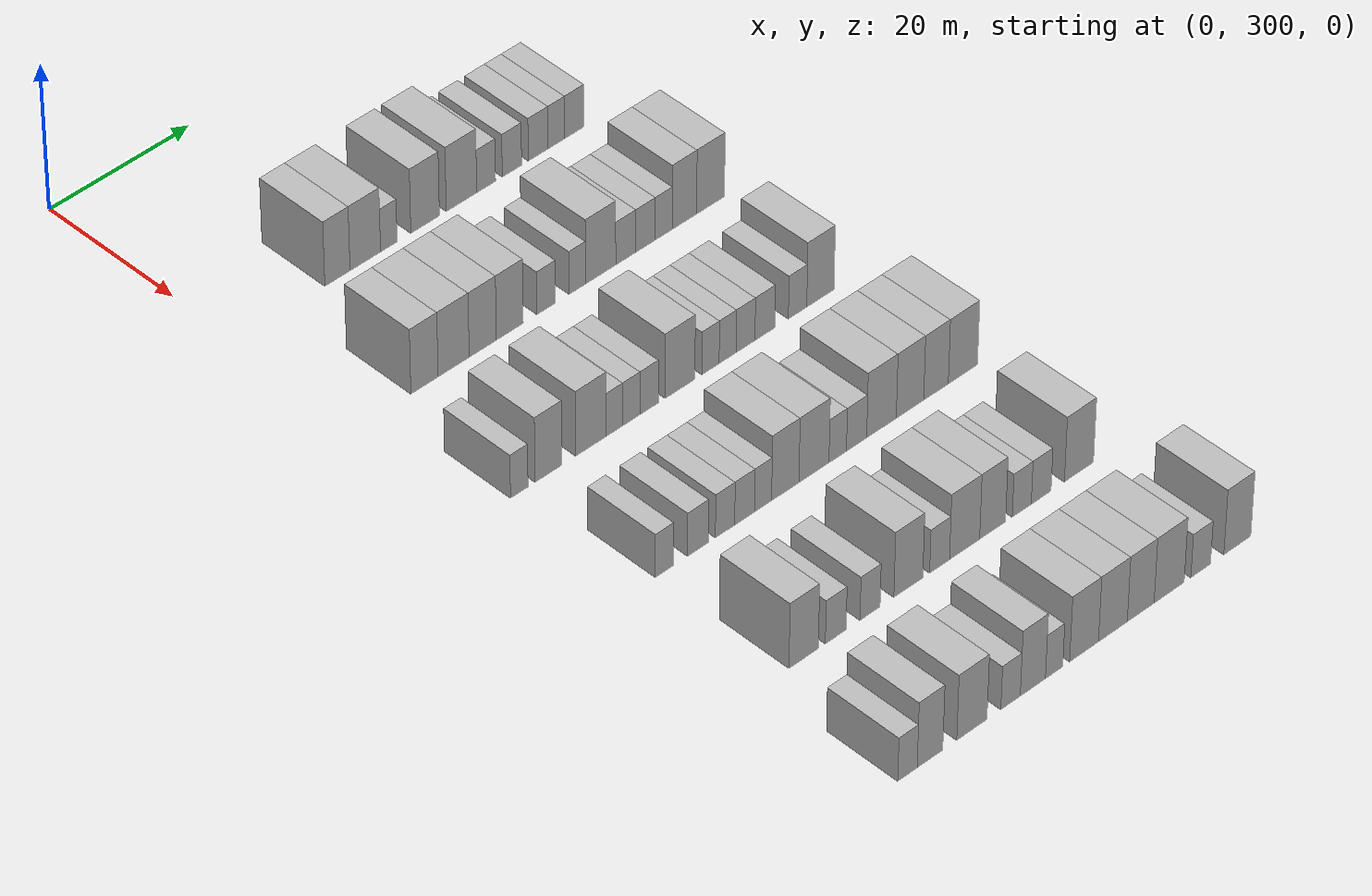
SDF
<sdf version="1.6">
 <world name="default">
  <model name="building_168">
   <static>1</static>
   <pose>25.0000 314.5331 0 0.000000 0.000000 0.000000</pose>
   <link name="link">
    <pose>0 0 4.50 0 0 0</pose>
    <collision name="collision"><geometry><box><size>10.0000 3.6293 9.0000</size></box></geometry></collision>
    <visual name="visual">
     <cast_shadows>0</cast_shadows>
     <geometry><box><size>10.0000 3.6293 9.0000</size></box></geometry>
     <material>
      <script>
       <uri>model://HANNAS_wall/materials/scripts</uri>
       <uri>model://HANNAS_wall/materials/textures</uri>
       <name>vrc/HANNAS_wall</name>
      </script>
     </material>
    </visual>
   </link>
  </model>
  <model name="building_169">
   <static>1</static>
   <pose>25.0000 318.5577 0 0.000000 0.000000 0.000000</pose>
   <link name="link">
    <pose>0 0 4.50 0 0 0</pose>
    <collision name="collision"><geometry><box><size>10.0000 4.4200 9.0000</size></box></geometry></collision>
    <visual name="visual">
     <cast_shadows>0</cast_shadows>
     <geometry><box><size>10.0000 4.4200 9.0000</size></box></geometry>
     <material>
      <script>
       <uri>model://HANNAS_wall/materials/scripts</uri>
       <uri>model://HANNAS_wall/materials/textures</uri>
       <name>vrc/HANNAS_wall</name>
      </script>
     </material>
    </visual>
   </link>
  </model>
  <model name="building_170">
   <static>1</static>
   <pose>25.0000 321.9725 0 0.000000 0.000000 0.000000</pose>
   <link name="link">
    <pose>0 0 3.00 0 0 0</pose>
    <collision name="collision"><geometry><box><size>10.0000 2.4096 6.0000</size></box></geometry></collision>
    <visual name="visual">
     <cast_shadows>0</cast_shadows>
     <geometry><box><size>10.0000 2.4096 6.0000</size></box></geometry>
     <material>
      <script>
       <uri>model://HANNAS_wall/materials/scripts</uri>
       <uri>model://HANNAS_wall/materials/textures</uri>
       <name>vrc/HANNAS_wall</name>
      </script>
     </material>
    </visual>
   </link>
  </model>
  <model name="building_171">
   <static>1</static>
   <pose>25.0000 327.2712 0 0.000000 0.000000 0.000000</pose>
   <link name="link">
    <pose>0 0 4.50 0 0 0</pose>
    <collision name="collision"><geometry><box><size>10.0000 4.1877 9.0000</size></box></geometry></collision>
    <visual name="visual">
     <cast_shadows>0</cast_shadows>
     <geometry><box><size>10.0000 4.1877 9.0000</size></box></geometry>
     <material>
      <script>
       <uri>model://HANNAS_wall/materials/scripts</uri>
       <uri>model://HANNAS_wall/materials/textures</uri>
       <name>vrc/HANNAS_wall</name>
      </script>
     </material>
    </visual>
   </link>
  </model>
  <model name="building_172">
   <static>1</static>
   <pose>25.0000 332.6108 0 0.000000 0.000000 0.000000</pose>
   <link name="link">
    <pose>0 0 4.50 0 0 0</pose>
    <collision name="collision"><geometry><box><size>10.0000 4.4915 9.0000</size></box></geometry></collision>
    <visual name="visual">
     <cast_shadows>0</cast_shadows>
     <geometry><box><size>10.0000 4.4915 9.0000</size></box></geometry>
     <material>
      <script>
       <uri>model://HANNAS_wall/materials/scripts</uri>
       <uri>model://HANNAS_wall/materials/textures</uri>
       <name>vrc/HANNAS_wall</name>
      </script>
     </material>
    </visual>
   </link>
  </model>
  <model name="building_173">
   <static>1</static>
   <pose>25.0000 336.2495 0 0.000000 0.000000 0.000000</pose>
   <link name="link">
    <pose>0 0 3.00 0 0 0</pose>
    <collision name="collision"><geometry><box><size>10.0000 2.7859 6.0000</size></box></geometry></collision>
    <visual name="visual">
     <cast_shadows>0</cast_shadows>
     <geometry><box><size>10.0000 2.7859 6.0000</size></box></geometry>
     <material>
      <script>
       <uri>model://HANNAS_wall/materials/scripts</uri>
       <uri>model://HANNAS_wall/materials/textures</uri>
       <name>vrc/HANNAS_wall</name>
      </script>
     </material>
    </visual>
   </link>
  </model>
  <model name="building_174">
   <static>1</static>
   <pose>25.0000 340.0792 0 0.000000 0.000000 0.000000</pose>
   <link name="link">
    <pose>0 0 3.00 0 0 0</pose>
    <collision name="collision"><geometry><box><size>10.0000 2.8735 6.0000</size></box></geometry></collision>
    <visual name="visual">
     <cast_shadows>0</cast_shadows>
     <geometry><box><size>10.0000 2.8735 6.0000</size></box></geometry>
     <material>
      <script>
       <uri>model://HANNAS_wall/materials/scripts</uri>
       <uri>model://HANNAS_wall/materials/textures</uri>
       <name>vrc/HANNAS_wall</name>
      </script>
     </material>
    </visual>
   </link>
  </model>
  <model name="building_175">
   <static>1</static>
   <pose>25.0000 343.9974 0 0.000000 0.000000 0.000000</pose>
   <link name="link">
    <pose>0 0 3.00 0 0 0</pose>
    <collision name="collision"><geometry><box><size>10.0000 2.9628 6.0000</size></box></geometry></collision>
    <visual name="visual">
     <cast_shadows>0</cast_shadows>
     <geometry><box><size>10.0000 2.9628 6.0000</size></box></geometry>
     <material>
      <script>
       <uri>model://HANNAS_wall/materials/scripts</uri>
       <uri>model://HANNAS_wall/materials/textures</uri>
       <name>vrc/HANNAS_wall</name>
      </script>
     </material>
    </visual>
   </link>
  </model>
  <model name="building_176">
   <static>1</static>
   <pose>25.0000 346.7211 0 0.000000 0.000000 0.000000</pose>
   <link name="link">
    <pose>0 0 3.00 0 0 0</pose>
    <collision name="collision"><geometry><box><size>10.0000 2.4846 6.0000</size></box></geometry></collision>
    <visual name="visual">
     <cast_shadows>0</cast_shadows>
     <geometry><box><size>10.0000 2.4846 6.0000</size></box></geometry>
     <material>
      <script>
       <uri>model://HANNAS_wall/materials/scripts</uri>
       <uri>model://HANNAS_wall/materials/textures</uri>
       <name>vrc/HANNAS_wall</name>
      </script>
     </material>
    </visual>
   </link>
  </model>
  <model name="building_177">
   <static>1</static>
   <pose>25.0000 349.4142 0 0.000000 0.000000 0.000000</pose>
   <link name="link">
    <pose>0 0 3.00 0 0 0</pose>
    <collision name="collision"><geometry><box><size>10.0000 2.9015 6.0000</size></box></geometry></collision>
    <visual name="visual">
     <cast_shadows>0</cast_shadows>
     <geometry><box><size>10.0000 2.9015 6.0000</size></box></geometry>
     <material>
      <script>
       <uri>model://HANNAS_wall/materials/scripts</uri>
       <uri>model://HANNAS_wall/materials/textures</uri>
       <name>vrc/HANNAS_wall</name>
      </script>
     </material>
    </visual>
   </link>
  </model>
  <model name="building_338">
   <static>1</static>
   <pose>44.0000 309.5676 0 0.000000 0.000000 0.000000</pose>
   <link name="link">
    <pose>0 0 4.50 0 0 0</pose>
    <collision name="collision"><geometry><box><size>10.0000 3.8943 9.0000</size></box></geometry></collision>
    <visual name="visual">
     <cast_shadows>0</cast_shadows>
     <geometry><box><size>10.0000 3.8943 9.0000</size></box></geometry>
     <material>
      <script>
       <uri>model://HANNAS_wall/materials/scripts</uri>
       <uri>model://HANNAS_wall/materials/textures</uri>
       <name>vrc/HANNAS_wall</name>
      </script>
     </material>
    </visual>
   </link>
  </model>
  <model name="building_339">
   <static>1</static>
   <pose>44.0000 313.7508 0 0.000000 0.000000 0.000000</pose>
   <link name="link">
    <pose>0 0 4.50 0 0 0</pose>
    <collision name="collision"><geometry><box><size>10.0000 4.4722 9.0000</size></box></geometry></collision>
    <visual name="visual">
     <cast_shadows>0</cast_shadows>
     <geometry><box><size>10.0000 4.4722 9.0000</size></box></geometry>
     <material>
      <script>
       <uri>model://HANNAS_wall/materials/scripts</uri>
       <uri>model://HANNAS_wall/materials/textures</uri>
       <name>vrc/HANNAS_wall</name>
      </script>
     </material>
    </visual>
   </link>
  </model>
  <model name="building_340">
   <static>1</static>
   <pose>44.0000 317.9489 0 0.000000 0.000000 0.000000</pose>
   <link name="link">
    <pose>0 0 4.50 0 0 0</pose>
    <collision name="collision"><geometry><box><size>10.0000 3.9238 9.0000</size></box></geometry></collision>
    <visual name="visual">
     <cast_shadows>0</cast_shadows>
     <geometry><box><size>10.0000 3.9238 9.0000</size></box></geometry>
     <material>
      <script>
       <uri>model://HANNAS_wall/materials/scripts</uri>
       <uri>model://HANNAS_wall/materials/textures</uri>
       <name>vrc/HANNAS_wall</name>
      </script>
     </material>
    </visual>
   </link>
  </model>
  <model name="building_341">
   <static>1</static>
   <pose>44.0000 321.8660 0 0.000000 0.000000 0.000000</pose>
   <link name="link">
    <pose>0 0 4.50 0 0 0</pose>
    <collision name="collision"><geometry><box><size>10.0000 3.9105 9.0000</size></box></geometry></collision>
    <visual name="visual">
     <cast_shadows>0</cast_shadows>
     <geometry><box><size>10.0000 3.9105 9.0000</size></box></geometry>
     <material>
      <script>
       <uri>model://HANNAS_wall/materials/scripts</uri>
       <uri>model://HANNAS_wall/materials/textures</uri>
       <name>vrc/HANNAS_wall</name>
      </script>
     </material>
    </visual>
   </link>
  </model>
  <model name="building_342">
   <static>1</static>
   <pose>44.0000 327.1746 0 0.000000 0.000000 0.000000</pose>
   <link name="link">
    <pose>0 0 3.00 0 0 0</pose>
    <collision name="collision"><geometry><box><size>10.0000 2.7068 6.0000</size></box></geometry></collision>
    <visual name="visual">
     <cast_shadows>0</cast_shadows>
     <geometry><box><size>10.0000 2.7068 6.0000</size></box></geometry>
     <material>
      <script>
       <uri>model://HANNAS_wall/materials/scripts</uri>
       <uri>model://HANNAS_wall/materials/textures</uri>
       <name>vrc/HANNAS_wall</name>
      </script>
     </material>
    </visual>
   </link>
  </model>
  <model name="building_343">
   <static>1</static>
   <pose>44.0000 331.7352 0 0.000000 0.000000 0.000000</pose>
   <link name="link">
    <pose>0 0 3.00 0 0 0</pose>
    <collision name="collision"><geometry><box><size>10.0000 2.4142 6.0000</size></box></geometry></collision>
    <visual name="visual">
     <cast_shadows>0</cast_shadows>
     <geometry><box><size>10.0000 2.4142 6.0000</size></box></geometry>
     <material>
      <script>
       <uri>model://HANNAS_wall/materials/scripts</uri>
       <uri>model://HANNAS_wall/materials/textures</uri>
       <name>vrc/HANNAS_wall</name>
      </script>
     </material>
    </visual>
   </link>
  </model>
  <model name="building_344">
   <static>1</static>
   <pose>44.0000 335.1726 0 0.000000 0.000000 0.000000</pose>
   <link name="link">
    <pose>0 0 4.50 0 0 0</pose>
    <collision name="collision"><geometry><box><size>10.0000 4.4607 9.0000</size></box></geometry></collision>
    <visual name="visual">
     <cast_shadows>0</cast_shadows>
     <geometry><box><size>10.0000 4.4607 9.0000</size></box></geometry>
     <material>
      <script>
       <uri>model://HANNAS_wall/materials/scripts</uri>
       <uri>model://HANNAS_wall/materials/textures</uri>
       <name>vrc/HANNAS_wall</name>
      </script>
     </material>
    </visual>
   </link>
  </model>
  <model name="building_345">
   <static>1</static>
   <pose>44.0000 338.8872 0 0.000000 0.000000 0.000000</pose>
   <link name="link">
    <pose>0 0 3.00 0 0 0</pose>
    <collision name="collision"><geometry><box><size>10.0000 2.9686 6.0000</size></box></geometry></collision>
    <visual name="visual">
     <cast_shadows>0</cast_shadows>
     <geometry><box><size>10.0000 2.9686 6.0000</size></box></geometry>
     <material>
      <script>
       <uri>model://HANNAS_wall/materials/scripts</uri>
       <uri>model://HANNAS_wall/materials/textures</uri>
       <name>vrc/HANNAS_wall</name>
      </script>
     </material>
    </visual>
   </link>
  </model>
  <model name="building_346">
   <static>1</static>
   <pose>44.0000 341.8207 0 0.000000 0.000000 0.000000</pose>
   <link name="link">
    <pose>0 0 3.00 0 0 0</pose>
    <collision name="collision"><geometry><box><size>10.0000 2.8985 6.0000</size></box></geometry></collision>
    <visual name="visual">
     <cast_shadows>0</cast_shadows>
     <geometry><box><size>10.0000 2.8985 6.0000</size></box></geometry>
     <material>
      <script>
       <uri>model://HANNAS_wall/materials/scripts</uri>
       <uri>model://HANNAS_wall/materials/textures</uri>
       <name>vrc/HANNAS_wall</name>
      </script>
     </material>
    </visual>
   </link>
  </model>
  <model name="building_347">
   <static>1</static>
   <pose>44.0000 344.5377 0 0.000000 0.000000 0.000000</pose>
   <link name="link">
    <pose>0 0 3.00 0 0 0</pose>
    <collision name="collision"><geometry><box><size>10.0000 2.5354 6.0000</size></box></geometry></collision>
    <visual name="visual">
     <cast_shadows>0</cast_shadows>
     <geometry><box><size>10.0000 2.5354 6.0000</size></box></geometry>
     <material>
      <script>
       <uri>model://HANNAS_wall/materials/scripts</uri>
       <uri>model://HANNAS_wall/materials/textures</uri>
       <name>vrc/HANNAS_wall</name>
      </script>
     </material>
    </visual>
   </link>
  </model>
  <model name="building_348">
   <static>1</static>
   <pose>44.0000 347.6436 0 0.000000 0.000000 0.000000</pose>
   <link name="link">
    <pose>0 0 4.50 0 0 0</pose>
    <collision name="collision"><geometry><box><size>10.0000 3.6764 9.0000</size></box></geometry></collision>
    <visual name="visual">
     <cast_shadows>0</cast_shadows>
     <geometry><box><size>10.0000 3.6764 9.0000</size></box></geometry>
     <material>
      <script>
       <uri>model://HANNAS_wall/materials/scripts</uri>
       <uri>model://HANNAS_wall/materials/textures</uri>
       <name>vrc/HANNAS_wall</name>
      </script>
     </material>
    </visual>
   </link>
  </model>
  <model name="building_349">
   <static>1</static>
   <pose>44.0000 351.5743 0 0.000000 0.000000 0.000000</pose>
   <link name="link">
    <pose>0 0 4.50 0 0 0</pose>
    <collision name="collision"><geometry><box><size>10.0000 4.1850 9.0000</size></box></geometry></collision>
    <visual name="visual">
     <cast_shadows>0</cast_shadows>
     <geometry><box><size>10.0000 4.1850 9.0000</size></box></geometry>
     <material>
      <script>
       <uri>model://HANNAS_wall/materials/scripts</uri>
       <uri>model://HANNAS_wall/materials/textures</uri>
       <name>vrc/HANNAS_wall</name>
      </script>
     </material>
    </visual>
   </link>
  </model>
  <model name="building_507">
   <static>1</static>
   <pose>63.0000 305.3097 0 0.000000 0.000000 0.000000</pose>
   <link name="link">
    <pose>0 0 3.00 0 0 0</pose>
    <collision name="collision"><geometry><box><size>10.0000 2.4879 6.0000</size></box></geometry></collision>
    <visual name="visual">
     <cast_shadows>0</cast_shadows>
     <geometry><box><size>10.0000 2.4879 6.0000</size></box></geometry>
     <material>
      <script>
       <uri>model://HANNAS_wall/materials/scripts</uri>
       <uri>model://HANNAS_wall/materials/textures</uri>
       <name>vrc/HANNAS_wall</name>
      </script>
     </material>
    </visual>
   </link>
  </model>
  <model name="building_508">
   <static>1</static>
   <pose>63.0000 309.4600 0 0.000000 0.000000 0.000000</pose>
   <link name="link">
    <pose>0 0 4.50 0 0 0</pose>
    <collision name="collision"><geometry><box><size>10.0000 3.8126 9.0000</size></box></geometry></collision>
    <visual name="visual">
     <cast_shadows>0</cast_shadows>
     <geometry><box><size>10.0000 3.8126 9.0000</size></box></geometry>
     <material>
      <script>
       <uri>model://HANNAS_wall/materials/scripts</uri>
       <uri>model://HANNAS_wall/materials/textures</uri>
       <name>vrc/HANNAS_wall</name>
      </script>
     </material>
    </visual>
   </link>
  </model>
  <model name="building_509">
   <static>1</static>
   <pose>63.0000 315.5588 0 0.000000 0.000000 0.000000</pose>
   <link name="link">
    <pose>0 0 4.50 0 0 0</pose>
    <collision name="collision"><geometry><box><size>10.0000 4.3851 9.0000</size></box></geometry></collision>
    <visual name="visual">
     <cast_shadows>0</cast_shadows>
     <geometry><box><size>10.0000 4.3851 9.0000</size></box></geometry>
     <material>
      <script>
       <uri>model://HANNAS_wall/materials/scripts</uri>
       <uri>model://HANNAS_wall/materials/textures</uri>
       <name>vrc/HANNAS_wall</name>
      </script>
     </material>
    </visual>
   </link>
  </model>
  <model name="building_510">
   <static>1</static>
   <pose>63.0000 318.9517 0 0.000000 0.000000 0.000000</pose>
   <link name="link">
    <pose>0 0 3.00 0 0 0</pose>
    <collision name="collision"><geometry><box><size>10.0000 2.4007 6.0000</size></box></geometry></collision>
    <visual name="visual">
     <cast_shadows>0</cast_shadows>
     <geometry><box><size>10.0000 2.4007 6.0000</size></box></geometry>
     <material>
      <script>
       <uri>model://HANNAS_wall/materials/scripts</uri>
       <uri>model://HANNAS_wall/materials/textures</uri>
       <name>vrc/HANNAS_wall</name>
      </script>
     </material>
    </visual>
   </link>
  </model>
  <model name="building_511">
   <static>1</static>
   <pose>63.0000 321.3993 0 0.000000 0.000000 0.000000</pose>
   <link name="link">
    <pose>0 0 3.00 0 0 0</pose>
    <collision name="collision"><geometry><box><size>10.0000 2.4945 6.0000</size></box></geometry></collision>
    <visual name="visual">
     <cast_shadows>0</cast_shadows>
     <geometry><box><size>10.0000 2.4945 6.0000</size></box></geometry>
     <material>
      <script>
       <uri>model://HANNAS_wall/materials/scripts</uri>
       <uri>model://HANNAS_wall/materials/textures</uri>
       <name>vrc/HANNAS_wall</name>
      </script>
     </material>
    </visual>
   </link>
  </model>
  <model name="building_512">
   <static>1</static>
   <pose>63.0000 323.9806 0 0.000000 0.000000 0.000000</pose>
   <link name="link">
    <pose>0 0 3.00 0 0 0</pose>
    <collision name="collision"><geometry><box><size>10.0000 2.6681 6.0000</size></box></geometry></collision>
    <visual name="visual">
     <cast_shadows>0</cast_shadows>
     <geometry><box><size>10.0000 2.6681 6.0000</size></box></geometry>
     <material>
      <script>
       <uri>model://HANNAS_wall/materials/scripts</uri>
       <uri>model://HANNAS_wall/materials/textures</uri>
       <name>vrc/HANNAS_wall</name>
      </script>
     </material>
    </visual>
   </link>
  </model>
  <model name="building_513">
   <static>1</static>
   <pose>63.0000 328.4974 0 0.000000 0.000000 0.000000</pose>
   <link name="link">
    <pose>0 0 4.50 0 0 0</pose>
    <collision name="collision"><geometry><box><size>10.0000 4.3653 9.0000</size></box></geometry></collision>
    <visual name="visual">
     <cast_shadows>0</cast_shadows>
     <geometry><box><size>10.0000 4.3653 9.0000</size></box></geometry>
     <material>
      <script>
       <uri>model://HANNAS_wall/materials/scripts</uri>
       <uri>model://HANNAS_wall/materials/textures</uri>
       <name>vrc/HANNAS_wall</name>
      </script>
     </material>
    </visual>
   </link>
  </model>
  <model name="building_514">
   <static>1</static>
   <pose>63.0000 332.9590 0 0.000000 0.000000 0.000000</pose>
   <link name="link">
    <pose>0 0 3.00 0 0 0</pose>
    <collision name="collision"><geometry><box><size>10.0000 2.5580 6.0000</size></box></geometry></collision>
    <visual name="visual">
     <cast_shadows>0</cast_shadows>
     <geometry><box><size>10.0000 2.5580 6.0000</size></box></geometry>
     <material>
      <script>
       <uri>model://HANNAS_wall/materials/scripts</uri>
       <uri>model://HANNAS_wall/materials/textures</uri>
       <name>vrc/HANNAS_wall</name>
      </script>
     </material>
    </visual>
   </link>
  </model>
  <model name="building_515">
   <static>1</static>
   <pose>63.0000 335.4953 0 0.000000 0.000000 0.000000</pose>
   <link name="link">
    <pose>0 0 3.00 0 0 0</pose>
    <collision name="collision"><geometry><box><size>10.0000 2.5147 6.0000</size></box></geometry></collision>
    <visual name="visual">
     <cast_shadows>0</cast_shadows>
     <geometry><box><size>10.0000 2.5147 6.0000</size></box></geometry>
     <material>
      <script>
       <uri>model://HANNAS_wall/materials/scripts</uri>
       <uri>model://HANNAS_wall/materials/textures</uri>
       <name>vrc/HANNAS_wall</name>
      </script>
     </material>
    </visual>
   </link>
  </model>
  <model name="building_516">
   <static>1</static>
   <pose>63.0000 338.1464 0 0.000000 0.000000 0.000000</pose>
   <link name="link">
    <pose>0 0 3.00 0 0 0</pose>
    <collision name="collision"><geometry><box><size>10.0000 2.7874 6.0000</size></box></geometry></collision>
    <visual name="visual">
     <cast_shadows>0</cast_shadows>
     <geometry><box><size>10.0000 2.7874 6.0000</size></box></geometry>
     <material>
      <script>
       <uri>model://HANNAS_wall/materials/scripts</uri>
       <uri>model://HANNAS_wall/materials/textures</uri>
       <name>vrc/HANNAS_wall</name>
      </script>
     </material>
    </visual>
   </link>
  </model>
  <model name="building_517">
   <static>1</static>
   <pose>63.0000 341.0247 0 0.000000 0.000000 0.000000</pose>
   <link name="link">
    <pose>0 0 3.00 0 0 0</pose>
    <collision name="collision"><geometry><box><size>10.0000 2.9693 6.0000</size></box></geometry></collision>
    <visual name="visual">
     <cast_shadows>0</cast_shadows>
     <geometry><box><size>10.0000 2.9693 6.0000</size></box></geometry>
     <material>
      <script>
       <uri>model://HANNAS_wall/materials/scripts</uri>
       <uri>model://HANNAS_wall/materials/textures</uri>
       <name>vrc/HANNAS_wall</name>
      </script>
     </material>
    </visual>
   </link>
  </model>
  <model name="building_518">
   <static>1</static>
   <pose>63.0000 345.8822 0 0.000000 0.000000 0.000000</pose>
   <link name="link">
    <pose>0 0 3.00 0 0 0</pose>
    <collision name="collision"><geometry><box><size>10.0000 2.7456 6.0000</size></box></geometry></collision>
    <visual name="visual">
     <cast_shadows>0</cast_shadows>
     <geometry><box><size>10.0000 2.7456 6.0000</size></box></geometry>
     <material>
      <script>
       <uri>model://HANNAS_wall/materials/scripts</uri>
       <uri>model://HANNAS_wall/materials/textures</uri>
       <name>vrc/HANNAS_wall</name>
      </script>
     </material>
    </visual>
   </link>
  </model>
  <model name="building_519">
   <static>1</static>
   <pose>63.0000 349.3002 0 0.000000 0.000000 0.000000</pose>
   <link name="link">
    <pose>0 0 4.50 0 0 0</pose>
    <collision name="collision"><geometry><box><size>10.0000 4.0905 9.0000</size></box></geometry></collision>
    <visual name="visual">
     <cast_shadows>0</cast_shadows>
     <geometry><box><size>10.0000 4.0905 9.0000</size></box></geometry>
     <material>
      <script>
       <uri>model://HANNAS_wall/materials/scripts</uri>
       <uri>model://HANNAS_wall/materials/textures</uri>
       <name>vrc/HANNAS_wall</name>
      </script>
     </material>
    </visual>
   </link>
  </model>
  <model name="building_683">
   <static>1</static>
   <pose>82.0000 307.7933 0 0.000000 0.000000 0.000000</pose>
   <link name="link">
    <pose>0 0 3.00 0 0 0</pose>
    <collision name="collision"><geometry><box><size>10.0000 2.5948 6.0000</size></box></geometry></collision>
    <visual name="visual">
     <cast_shadows>0</cast_shadows>
     <geometry><box><size>10.0000 2.5948 6.0000</size></box></geometry>
     <material>
      <script>
       <uri>model://HANNAS_wall/materials/scripts</uri>
       <uri>model://HANNAS_wall/materials/textures</uri>
       <name>vrc/HANNAS_wall</name>
      </script>
     </material>
    </visual>
   </link>
  </model>
  <model name="building_684">
   <static>1</static>
   <pose>82.0000 312.5883 0 0.000000 0.000000 0.000000</pose>
   <link name="link">
    <pose>0 0 3.00 0 0 0</pose>
    <collision name="collision"><geometry><box><size>10.0000 2.9953 6.0000</size></box></geometry></collision>
    <visual name="visual">
     <cast_shadows>0</cast_shadows>
     <geometry><box><size>10.0000 2.9953 6.0000</size></box></geometry>
     <material>
      <script>
       <uri>model://HANNAS_wall/materials/scripts</uri>
       <uri>model://HANNAS_wall/materials/textures</uri>
       <name>vrc/HANNAS_wall</name>
      </script>
     </material>
    </visual>
   </link>
  </model>
  <model name="building_685">
   <static>1</static>
   <pose>82.0000 316.4751 0 0.000000 0.000000 0.000000</pose>
   <link name="link">
    <pose>0 0 3.00 0 0 0</pose>
    <collision name="collision"><geometry><box><size>10.0000 2.7782 6.0000</size></box></geometry></collision>
    <visual name="visual">
     <cast_shadows>0</cast_shadows>
     <geometry><box><size>10.0000 2.7782 6.0000</size></box></geometry>
     <material>
      <script>
       <uri>model://HANNAS_wall/materials/scripts</uri>
       <uri>model://HANNAS_wall/materials/textures</uri>
       <name>vrc/HANNAS_wall</name>
      </script>
     </material>
    </visual>
   </link>
  </model>
  <model name="building_686">
   <static>1</static>
   <pose>82.0000 319.3067 0 0.000000 0.000000 0.000000</pose>
   <link name="link">
    <pose>0 0 3.00 0 0 0</pose>
    <collision name="collision"><geometry><box><size>10.0000 2.8852 6.0000</size></box></geometry></collision>
    <visual name="visual">
     <cast_shadows>0</cast_shadows>
     <geometry><box><size>10.0000 2.8852 6.0000</size></box></geometry>
     <material>
      <script>
       <uri>model://HANNAS_wall/materials/scripts</uri>
       <uri>model://HANNAS_wall/materials/textures</uri>
       <name>vrc/HANNAS_wall</name>
      </script>
     </material>
    </visual>
   </link>
  </model>
  <model name="building_687">
   <static>1</static>
   <pose>82.0000 321.9771 0 0.000000 0.000000 0.000000</pose>
   <link name="link">
    <pose>0 0 3.00 0 0 0</pose>
    <collision name="collision"><geometry><box><size>10.0000 2.4556 6.0000</size></box></geometry></collision>
    <visual name="visual">
     <cast_shadows>0</cast_shadows>
     <geometry><box><size>10.0000 2.4556 6.0000</size></box></geometry>
     <material>
      <script>
       <uri>model://HANNAS_wall/materials/scripts</uri>
       <uri>model://HANNAS_wall/materials/textures</uri>
       <name>vrc/HANNAS_wall</name>
      </script>
     </material>
    </visual>
   </link>
  </model>
  <model name="building_688">
   <static>1</static>
   <pose>82.0000 325.1968 0 0.000000 0.000000 0.000000</pose>
   <link name="link">
    <pose>0 0 4.50 0 0 0</pose>
    <collision name="collision"><geometry><box><size>10.0000 3.9837 9.0000</size></box></geometry></collision>
    <visual name="visual">
     <cast_shadows>0</cast_shadows>
     <geometry><box><size>10.0000 3.9837 9.0000</size></box></geometry>
     <material>
      <script>
       <uri>model://HANNAS_wall/materials/scripts</uri>
       <uri>model://HANNAS_wall/materials/textures</uri>
       <name>vrc/HANNAS_wall</name>
      </script>
     </material>
    </visual>
   </link>
  </model>
  <model name="building_689">
   <static>1</static>
   <pose>82.0000 329.3831 0 0.000000 0.000000 0.000000</pose>
   <link name="link">
    <pose>0 0 4.50 0 0 0</pose>
    <collision name="collision"><geometry><box><size>10.0000 4.3890 9.0000</size></box></geometry></collision>
    <visual name="visual">
     <cast_shadows>0</cast_shadows>
     <geometry><box><size>10.0000 4.3890 9.0000</size></box></geometry>
     <material>
      <script>
       <uri>model://HANNAS_wall/materials/scripts</uri>
       <uri>model://HANNAS_wall/materials/textures</uri>
       <name>vrc/HANNAS_wall</name>
      </script>
     </material>
    </visual>
   </link>
  </model>
  <model name="building_690">
   <static>1</static>
   <pose>82.0000 332.8642 0 0.000000 0.000000 0.000000</pose>
   <link name="link">
    <pose>0 0 3.00 0 0 0</pose>
    <collision name="collision"><geometry><box><size>10.0000 2.5732 6.0000</size></box></geometry></collision>
    <visual name="visual">
     <cast_shadows>0</cast_shadows>
     <geometry><box><size>10.0000 2.5732 6.0000</size></box></geometry>
     <material>
      <script>
       <uri>model://HANNAS_wall/materials/scripts</uri>
       <uri>model://HANNAS_wall/materials/textures</uri>
       <name>vrc/HANNAS_wall</name>
      </script>
     </material>
    </visual>
   </link>
  </model>
  <model name="building_691">
   <static>1</static>
   <pose>82.0000 335.6436 0 0.000000 0.000000 0.000000</pose>
   <link name="link">
    <pose>0 0 3.00 0 0 0</pose>
    <collision name="collision"><geometry><box><size>10.0000 2.9855 6.0000</size></box></geometry></collision>
    <visual name="visual">
     <cast_shadows>0</cast_shadows>
     <geometry><box><size>10.0000 2.9855 6.0000</size></box></geometry>
     <material>
      <script>
       <uri>model://HANNAS_wall/materials/scripts</uri>
       <uri>model://HANNAS_wall/materials/textures</uri>
       <name>vrc/HANNAS_wall</name>
      </script>
     </material>
    </visual>
   </link>
  </model>
  <model name="building_692">
   <static>1</static>
   <pose>82.0000 339.3290 0 0.000000 0.000000 0.000000</pose>
   <link name="link">
    <pose>0 0 4.50 0 0 0</pose>
    <collision name="collision"><geometry><box><size>10.0000 4.3853 9.0000</size></box></geometry></collision>
    <visual name="visual">
     <cast_shadows>0</cast_shadows>
     <geometry><box><size>10.0000 4.3853 9.0000</size></box></geometry>
     <material>
      <script>
       <uri>model://HANNAS_wall/materials/scripts</uri>
       <uri>model://HANNAS_wall/materials/textures</uri>
       <name>vrc/HANNAS_wall</name>
      </script>
     </material>
    </visual>
   </link>
  </model>
  <model name="building_693">
   <static>1</static>
   <pose>82.0000 343.5672 0 0.000000 0.000000 0.000000</pose>
   <link name="link">
    <pose>0 0 4.50 0 0 0</pose>
    <collision name="collision"><geometry><box><size>10.0000 4.0912 9.0000</size></box></geometry></collision>
    <visual name="visual">
     <cast_shadows>0</cast_shadows>
     <geometry><box><size>10.0000 4.0912 9.0000</size></box></geometry>
     <material>
      <script>
       <uri>model://HANNAS_wall/materials/scripts</uri>
       <uri>model://HANNAS_wall/materials/textures</uri>
       <name>vrc/HANNAS_wall</name>
      </script>
     </material>
    </visual>
   </link>
  </model>
  <model name="building_694">
   <static>1</static>
   <pose>82.0000 347.4554 0 0.000000 0.000000 0.000000</pose>
   <link name="link">
    <pose>0 0 4.50 0 0 0</pose>
    <collision name="collision"><geometry><box><size>10.0000 3.6852 9.0000</size></box></geometry></collision>
    <visual name="visual">
     <cast_shadows>0</cast_shadows>
     <geometry><box><size>10.0000 3.6852 9.0000</size></box></geometry>
     <material>
      <script>
       <uri>model://HANNAS_wall/materials/scripts</uri>
       <uri>model://HANNAS_wall/materials/textures</uri>
       <name>vrc/HANNAS_wall</name>
      </script>
     </material>
    </visual>
   </link>
  </model>
  <model name="building_695">
   <static>1</static>
   <pose>82.0000 351.4911 0 0.000000 0.000000 0.000000</pose>
   <link name="link">
    <pose>0 0 4.50 0 0 0</pose>
    <collision name="collision"><geometry><box><size>10.0000 4.3862 9.0000</size></box></geometry></collision>
    <visual name="visual">
     <cast_shadows>0</cast_shadows>
     <geometry><box><size>10.0000 4.3862 9.0000</size></box></geometry>
     <material>
      <script>
       <uri>model://HANNAS_wall/materials/scripts</uri>
       <uri>model://HANNAS_wall/materials/textures</uri>
       <name>vrc/HANNAS_wall</name>
      </script>
     </material>
    </visual>
   </link>
  </model>
  <model name="building_868">
   <static>1</static>
   <pose>101.0000 308.9594 0 0.000000 0.000000 0.000000</pose>
   <link name="link">
    <pose>0 0 4.50 0 0 0</pose>
    <collision name="collision"><geometry><box><size>10.0000 4.1868 9.0000</size></box></geometry></collision>
    <visual name="visual">
     <cast_shadows>0</cast_shadows>
     <geometry><box><size>10.0000 4.1868 9.0000</size></box></geometry>
     <material>
      <script>
       <uri>model://HANNAS_wall/materials/scripts</uri>
       <uri>model://HANNAS_wall/materials/textures</uri>
       <name>vrc/HANNAS_wall</name>
      </script>
     </material>
    </visual>
   </link>
  </model>
  <model name="building_869">
   <static>1</static>
   <pose>101.0000 313.5414 0 0.000000 0.000000 0.000000</pose>
   <link name="link">
    <pose>0 0 3.00 0 0 0</pose>
    <collision name="collision"><geometry><box><size>10.0000 2.9771 6.0000</size></box></geometry></collision>
    <visual name="visual">
     <cast_shadows>0</cast_shadows>
     <geometry><box><size>10.0000 2.9771 6.0000</size></box></geometry>
     <material>
      <script>
       <uri>model://HANNAS_wall/materials/scripts</uri>
       <uri>model://HANNAS_wall/materials/textures</uri>
       <name>vrc/HANNAS_wall</name>
      </script>
     </material>
    </visual>
   </link>
  </model>
  <model name="building_870">
   <static>1</static>
   <pose>101.0000 318.4770 0 0.000000 0.000000 0.000000</pose>
   <link name="link">
    <pose>0 0 3.00 0 0 0</pose>
    <collision name="collision"><geometry><box><size>10.0000 2.8941 6.0000</size></box></geometry></collision>
    <visual name="visual">
     <cast_shadows>0</cast_shadows>
     <geometry><box><size>10.0000 2.8941 6.0000</size></box></geometry>
     <material>
      <script>
       <uri>model://HANNAS_wall/materials/scripts</uri>
       <uri>model://HANNAS_wall/materials/textures</uri>
       <name>vrc/HANNAS_wall</name>
      </script>
     </material>
    </visual>
   </link>
  </model>
  <model name="building_871">
   <static>1</static>
   <pose>101.0000 324.0234 0 0.000000 0.000000 0.000000</pose>
   <link name="link">
    <pose>0 0 4.50 0 0 0</pose>
    <collision name="collision"><geometry><box><size>10.0000 4.1987 9.0000</size></box></geometry></collision>
    <visual name="visual">
     <cast_shadows>0</cast_shadows>
     <geometry><box><size>10.0000 4.1987 9.0000</size></box></geometry>
     <material>
      <script>
       <uri>model://HANNAS_wall/materials/scripts</uri>
       <uri>model://HANNAS_wall/materials/textures</uri>
       <name>vrc/HANNAS_wall</name>
      </script>
     </material>
    </visual>
   </link>
  </model>
  <model name="building_872">
   <static>1</static>
   <pose>101.0000 328.5752 0 0.000000 0.000000 0.000000</pose>
   <link name="link">
    <pose>0 0 3.00 0 0 0</pose>
    <collision name="collision"><geometry><box><size>10.0000 2.9050 6.0000</size></box></geometry></collision>
    <visual name="visual">
     <cast_shadows>0</cast_shadows>
     <geometry><box><size>10.0000 2.9050 6.0000</size></box></geometry>
     <material>
      <script>
       <uri>model://HANNAS_wall/materials/scripts</uri>
       <uri>model://HANNAS_wall/materials/textures</uri>
       <name>vrc/HANNAS_wall</name>
      </script>
     </material>
    </visual>
   </link>
  </model>
  <model name="building_873">
   <static>1</static>
   <pose>101.0000 332.2400 0 0.000000 0.000000 0.000000</pose>
   <link name="link">
    <pose>0 0 4.50 0 0 0</pose>
    <collision name="collision"><geometry><box><size>10.0000 4.4245 9.0000</size></box></geometry></collision>
    <visual name="visual">
     <cast_shadows>0</cast_shadows>
     <geometry><box><size>10.0000 4.4245 9.0000</size></box></geometry>
     <material>
      <script>
       <uri>model://HANNAS_wall/materials/scripts</uri>
       <uri>model://HANNAS_wall/materials/textures</uri>
       <name>vrc/HANNAS_wall</name>
      </script>
     </material>
    </visual>
   </link>
  </model>
  <model name="building_874">
   <static>1</static>
   <pose>101.0000 336.3669 0 0.000000 0.000000 0.000000</pose>
   <link name="link">
    <pose>0 0 4.50 0 0 0</pose>
    <collision name="collision"><geometry><box><size>10.0000 3.8293 9.0000</size></box></geometry></collision>
    <visual name="visual">
     <cast_shadows>0</cast_shadows>
     <geometry><box><size>10.0000 3.8293 9.0000</size></box></geometry>
     <material>
      <script>
       <uri>model://HANNAS_wall/materials/scripts</uri>
       <uri>model://HANNAS_wall/materials/textures</uri>
       <name>vrc/HANNAS_wall</name>
      </script>
     </material>
    </visual>
   </link>
  </model>
  <model name="building_875">
   <static>1</static>
   <pose>101.0000 340.6876 0 0.000000 0.000000 0.000000</pose>
   <link name="link">
    <pose>0 0 3.00 0 0 0</pose>
    <collision name="collision"><geometry><box><size>10.0000 2.8121 6.0000</size></box></geometry></collision>
    <visual name="visual">
     <cast_shadows>0</cast_shadows>
     <geometry><box><size>10.0000 2.8121 6.0000</size></box></geometry>
     <material>
      <script>
       <uri>model://HANNAS_wall/materials/scripts</uri>
       <uri>model://HANNAS_wall/materials/textures</uri>
       <name>vrc/HANNAS_wall</name>
      </script>
     </material>
    </visual>
   </link>
  </model>
  <model name="building_876">
   <static>1</static>
   <pose>101.0000 343.5678 0 0.000000 0.000000 0.000000</pose>
   <link name="link">
    <pose>0 0 3.00 0 0 0</pose>
    <collision name="collision"><geometry><box><size>10.0000 2.9483 6.0000</size></box></geometry></collision>
    <visual name="visual">
     <cast_shadows>0</cast_shadows>
     <geometry><box><size>10.0000 2.9483 6.0000</size></box></geometry>
     <material>
      <script>
       <uri>model://HANNAS_wall/materials/scripts</uri>
       <uri>model://HANNAS_wall/materials/textures</uri>
       <name>vrc/HANNAS_wall</name>
      </script>
     </material>
    </visual>
   </link>
  </model>
  <model name="building_877">
   <static>1</static>
   <pose>101.0000 349.2221 0 0.000000 0.000000 0.000000</pose>
   <link name="link">
    <pose>0 0 4.50 0 0 0</pose>
    <collision name="collision"><geometry><box><size>10.0000 4.3603 9.0000</size></box></geometry></collision>
    <visual name="visual">
     <cast_shadows>0</cast_shadows>
     <geometry><box><size>10.0000 4.3603 9.0000</size></box></geometry>
     <material>
      <script>
       <uri>model://HANNAS_wall/materials/scripts</uri>
       <uri>model://HANNAS_wall/materials/textures</uri>
       <name>vrc/HANNAS_wall</name>
      </script>
     </material>
    </visual>
   </link>
  </model>
  <model name="building_1042">
   <static>1</static>
   <pose>120.0000 304.6057 0 0.000000 0.000000 0.000000</pose>
   <link name="link">
    <pose>0 0 3.00 0 0 0</pose>
    <collision name="collision"><geometry><box><size>10.0000 2.7490 6.0000</size></box></geometry></collision>
    <visual name="visual">
     <cast_shadows>0</cast_shadows>
     <geometry><box><size>10.0000 2.7490 6.0000</size></box></geometry>
     <material>
      <script>
       <uri>model://HANNAS_wall/materials/scripts</uri>
       <uri>model://HANNAS_wall/materials/textures</uri>
       <name>vrc/HANNAS_wall</name>
      </script>
     </material>
    </visual>
   </link>
  </model>
  <model name="building_1043">
   <static>1</static>
   <pose>120.0000 307.7989 0 0.000000 0.000000 0.000000</pose>
   <link name="link">
    <pose>0 0 4.50 0 0 0</pose>
    <collision name="collision"><geometry><box><size>10.0000 3.6376 9.0000</size></box></geometry></collision>
    <visual name="visual">
     <cast_shadows>0</cast_shadows>
     <geometry><box><size>10.0000 3.6376 9.0000</size></box></geometry>
     <material>
      <script>
       <uri>model://HANNAS_wall/materials/scripts</uri>
       <uri>model://HANNAS_wall/materials/textures</uri>
       <name>vrc/HANNAS_wall</name>
      </script>
     </material>
    </visual>
   </link>
  </model>
  <model name="building_1044">
   <static>1</static>
   <pose>120.0000 313.7855 0 0.000000 0.000000 0.000000</pose>
   <link name="link">
    <pose>0 0 4.50 0 0 0</pose>
    <collision name="collision"><geometry><box><size>10.0000 4.3356 9.0000</size></box></geometry></collision>
    <visual name="visual">
     <cast_shadows>0</cast_shadows>
     <geometry><box><size>10.0000 4.3356 9.0000</size></box></geometry>
     <material>
      <script>
       <uri>model://HANNAS_wall/materials/scripts</uri>
       <uri>model://HANNAS_wall/materials/textures</uri>
       <name>vrc/HANNAS_wall</name>
      </script>
     </material>
    </visual>
   </link>
  </model>
  <model name="building_1045">
   <static>1</static>
   <pose>120.0000 319.3582 0 0.000000 0.000000 0.000000</pose>
   <link name="link">
    <pose>0 0 3.00 0 0 0</pose>
    <collision name="collision"><geometry><box><size>10.0000 2.8098 6.0000</size></box></geometry></collision>
    <visual name="visual">
     <cast_shadows>0</cast_shadows>
     <geometry><box><size>10.0000 2.8098 6.0000</size></box></geometry>
     <material>
      <script>
       <uri>model://HANNAS_wall/materials/scripts</uri>
       <uri>model://HANNAS_wall/materials/textures</uri>
       <name>vrc/HANNAS_wall</name>
      </script>
     </material>
    </visual>
   </link>
  </model>
  <model name="building_1046">
   <static>1</static>
   <pose>120.0000 322.5884 0 0.000000 0.000000 0.000000</pose>
   <link name="link">
    <pose>0 0 4.50 0 0 0</pose>
    <collision name="collision"><geometry><box><size>10.0000 3.6505 9.0000</size></box></geometry></collision>
    <visual name="visual">
     <cast_shadows>0</cast_shadows>
     <geometry><box><size>10.0000 3.6505 9.0000</size></box></geometry>
     <material>
      <script>
       <uri>model://HANNAS_wall/materials/scripts</uri>
       <uri>model://HANNAS_wall/materials/textures</uri>
       <name>vrc/HANNAS_wall</name>
      </script>
     </material>
    </visual>
   </link>
  </model>
  <model name="building_1047">
   <static>1</static>
   <pose>120.0000 325.6728 0 0.000000 0.000000 0.000000</pose>
   <link name="link">
    <pose>0 0 3.00 0 0 0</pose>
    <collision name="collision"><geometry><box><size>10.0000 2.5183 6.0000</size></box></geometry></collision>
    <visual name="visual">
     <cast_shadows>0</cast_shadows>
     <geometry><box><size>10.0000 2.5183 6.0000</size></box></geometry>
     <material>
      <script>
       <uri>model://HANNAS_wall/materials/scripts</uri>
       <uri>model://HANNAS_wall/materials/textures</uri>
       <name>vrc/HANNAS_wall</name>
      </script>
     </material>
    </visual>
   </link>
  </model>
  <model name="building_1048">
   <static>1</static>
   <pose>120.0000 330.0434 0 0.000000 0.000000 0.000000</pose>
   <link name="link">
    <pose>0 0 4.50 0 0 0</pose>
    <collision name="collision"><geometry><box><size>10.0000 4.2229 9.0000</size></box></geometry></collision>
    <visual name="visual">
     <cast_shadows>0</cast_shadows>
     <geometry><box><size>10.0000 4.2229 9.0000</size></box></geometry>
     <material>
      <script>
       <uri>model://HANNAS_wall/materials/scripts</uri>
       <uri>model://HANNAS_wall/materials/textures</uri>
       <name>vrc/HANNAS_wall</name>
      </script>
     </material>
    </visual>
   </link>
  </model>
  <model name="building_1049">
   <static>1</static>
   <pose>120.0000 334.2779 0 0.000000 0.000000 0.000000</pose>
   <link name="link">
    <pose>0 0 4.50 0 0 0</pose>
    <collision name="collision"><geometry><box><size>10.0000 4.2462 9.0000</size></box></geometry></collision>
    <visual name="visual">
     <cast_shadows>0</cast_shadows>
     <geometry><box><size>10.0000 4.2462 9.0000</size></box></geometry>
     <material>
      <script>
       <uri>model://HANNAS_wall/materials/scripts</uri>
       <uri>model://HANNAS_wall/materials/textures</uri>
       <name>vrc/HANNAS_wall</name>
      </script>
     </material>
    </visual>
   </link>
  </model>
  <model name="building_1050">
   <static>1</static>
   <pose>120.0000 338.3885 0 0.000000 0.000000 0.000000</pose>
   <link name="link">
    <pose>0 0 4.50 0 0 0</pose>
    <collision name="collision"><geometry><box><size>10.0000 3.9750 9.0000</size></box></geometry></collision>
    <visual name="visual">
     <cast_shadows>0</cast_shadows>
     <geometry><box><size>10.0000 3.9750 9.0000</size></box></geometry>
     <material>
      <script>
       <uri>model://HANNAS_wall/materials/scripts</uri>
       <uri>model://HANNAS_wall/materials/textures</uri>
       <name>vrc/HANNAS_wall</name>
      </script>
     </material>
    </visual>
   </link>
  </model>
  <model name="building_1051">
   <static>1</static>
   <pose>120.0000 342.6139 0 0.000000 0.000000 0.000000</pose>
   <link name="link">
    <pose>0 0 4.50 0 0 0</pose>
    <collision name="collision"><geometry><box><size>10.0000 4.4758 9.0000</size></box></geometry></collision>
    <visual name="visual">
     <cast_shadows>0</cast_shadows>
     <geometry><box><size>10.0000 4.4758 9.0000</size></box></geometry>
     <material>
      <script>
       <uri>model://HANNAS_wall/materials/scripts</uri>
       <uri>model://HANNAS_wall/materials/textures</uri>
       <name>vrc/HANNAS_wall</name>
      </script>
     </material>
    </visual>
   </link>
  </model>
  <model name="building_1052">
   <static>1</static>
   <pose>120.0000 347.3246 0 0.000000 0.000000 0.000000</pose>
   <link name="link">
    <pose>0 0 3.00 0 0 0</pose>
    <collision name="collision"><geometry><box><size>10.0000 2.9457 6.0000</size></box></geometry></collision>
    <visual name="visual">
     <cast_shadows>0</cast_shadows>
     <geometry><box><size>10.0000 2.9457 6.0000</size></box></geometry>
     <material>
      <script>
       <uri>model://HANNAS_wall/materials/scripts</uri>
       <uri>model://HANNAS_wall/materials/textures</uri>
       <name>vrc/HANNAS_wall</name>
      </script>
     </material>
    </visual>
   </link>
  </model>
  <model name="building_1053">
   <static>1</static>
   <pose>120.0000 352.8268 0 0.000000 0.000000 0.000000</pose>
   <link name="link">
    <pose>0 0 4.50 0 0 0</pose>
    <collision name="collision"><geometry><box><size>10.0000 4.0587 9.0000</size></box></geometry></collision>
    <visual name="visual">
     <cast_shadows>0</cast_shadows>
     <geometry><box><size>10.0000 4.0587 9.0000</size></box></geometry>
     <material>
      <script>
       <uri>model://HANNAS_wall/materials/scripts</uri>
       <uri>model://HANNAS_wall/materials/textures</uri>
       <name>vrc/HANNAS_wall</name>
      </script>
     </material>
    </visual>
   </link>
  </model>
 </world>
</sdf>
